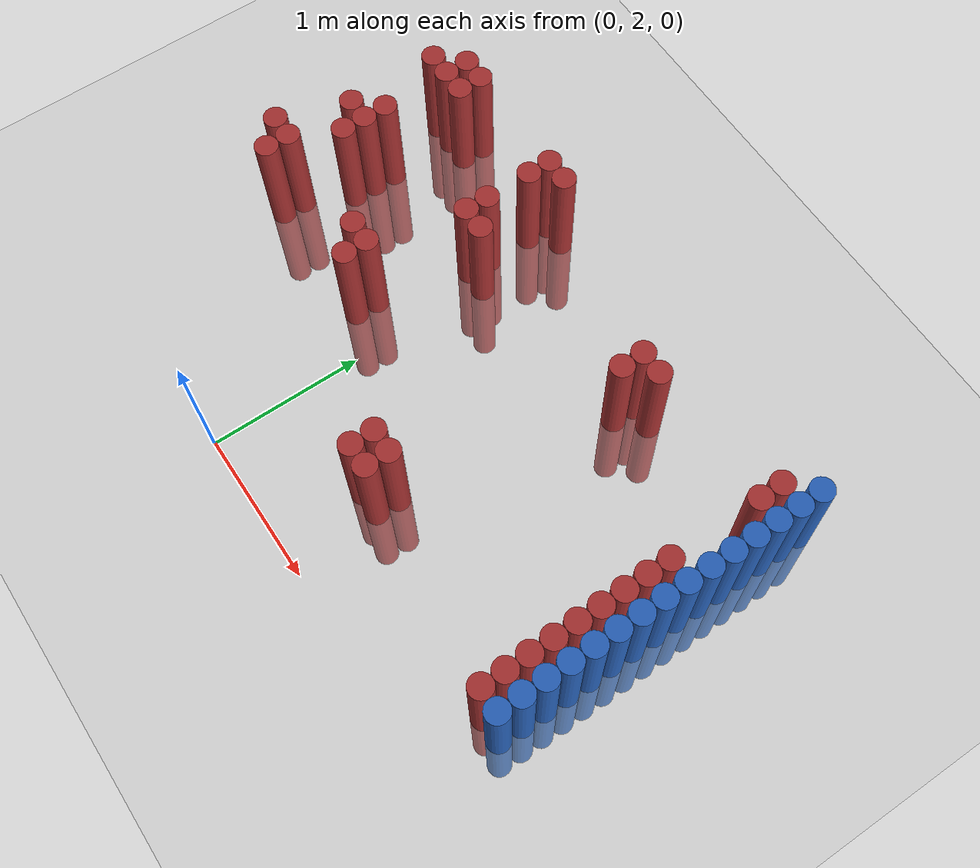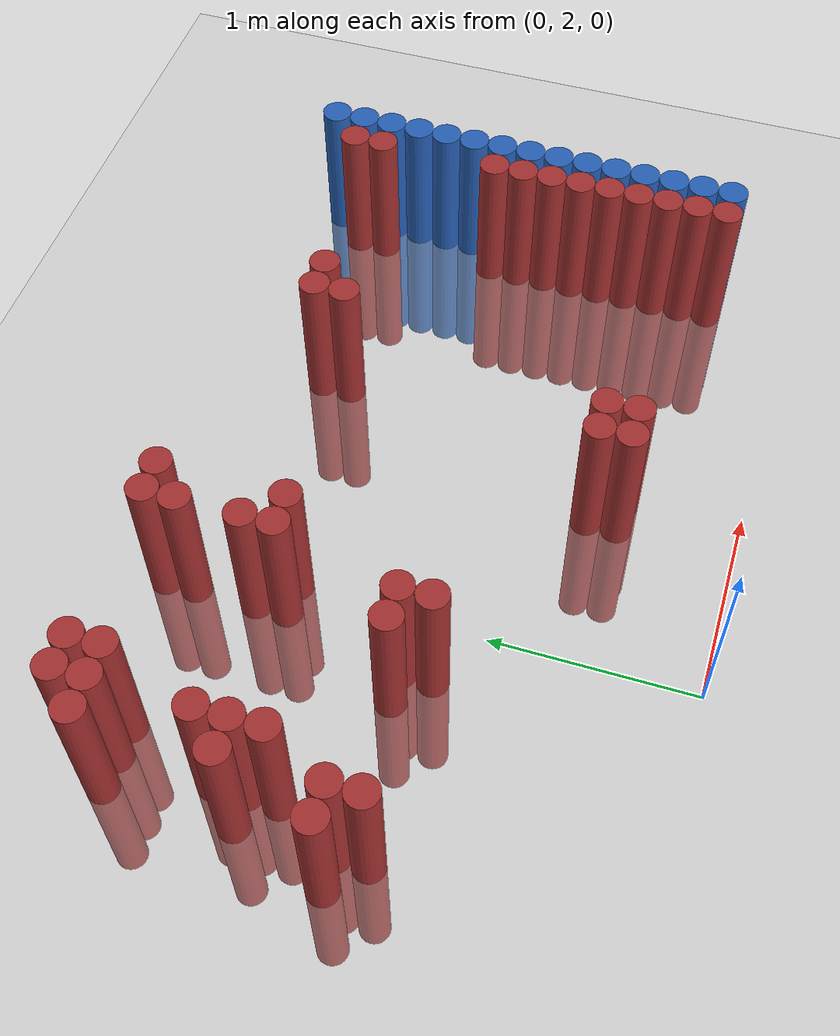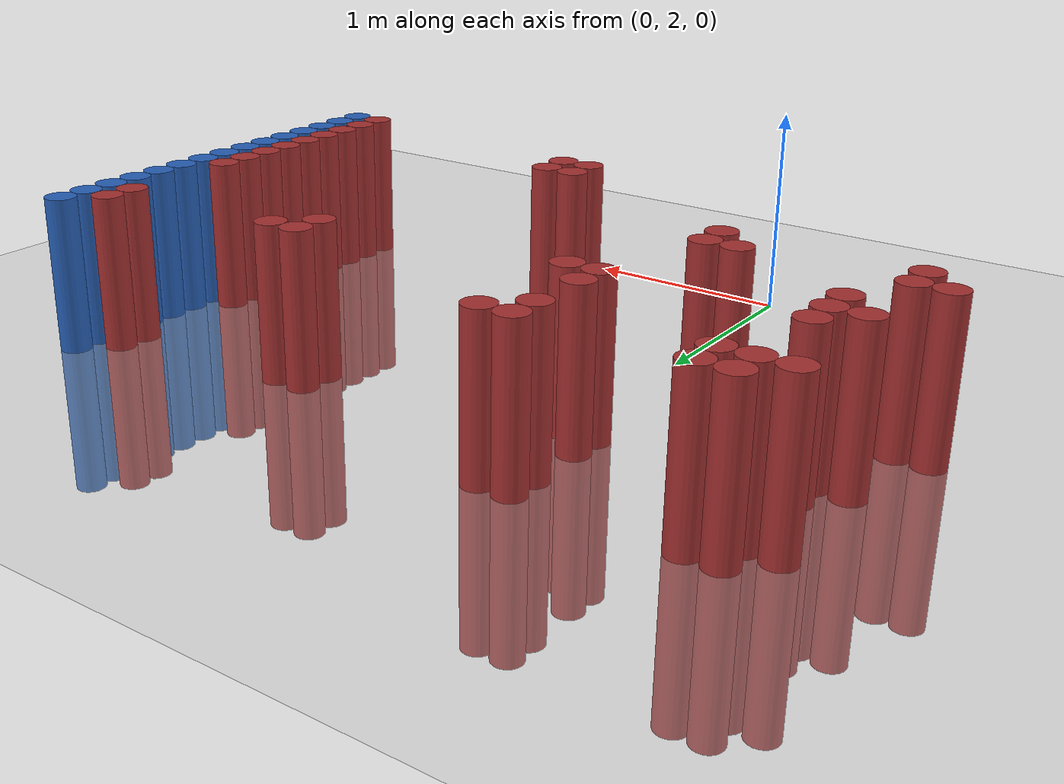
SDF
<sdf version="1.6">
 <world name="default">
  <model name="ground_plane">
   <static>1</static>
   <link name="link">
    <collision name="collision">
     <geometry><plane><normal>0 0 1</normal><size>100 100</size></plane></geometry>
     <surface><friction><ode><mu>100</mu><mu2>50</mu2></ode></friction></surface>
    </collision>
    <visual name="visual">
     <cast_shadows>0</cast_shadows>
     <geometry><plane><normal>0 0 1</normal><size>100 100</size></plane></geometry>
     <material>
      <script><uri>file://media/materials/scripts/gazebo.material</uri><name>Gazebo/Grey</name></script>
     </material>
    </visual>
   </link>
  </model>
  <model name="unit_cylinder_158">
   <static>1</static>
   <pose>-1.325000 3.325000 0.000000 0.000000 0.000000 0.000000</pose>
   <link name="link">
    <inertial>
     <mass>1</mass>
     <inertia><ixx>0.145833</ixx><ixy>0</ixy><ixz>0</ixz><iyy>0.145833</iyy><iyz>0</iyz><izz>0.125</izz></inertia>
    </inertial>
    <collision name="collision">
     <geometry><cylinder><radius>0.075000</radius><length>1.5</length></cylinder></geometry>
    </collision>
    <visual name="visual">
     <geometry><cylinder><radius>0.075000</radius><length>1.5</length></cylinder></geometry>
     <material>
      <ambient>0.648000 0.192000 0.192000 1</ambient>
      <diffuse>0.648000 0.192000 0.192000 1</diffuse>
     </material>
     <material>
      <script><name>Gazebo/Grey</name><uri>file://media/materials/scripts/gazebo.material</uri></script>
     </material>
    </visual>
   </link>
  </model>
  <model name="unit_cylinder_162">
   <static>1</static>
   <pose>-1.175000 3.175000 0.000000 0.000000 0.000000 0.000000</pose>
   <link name="link">
    <inertial>
     <mass>1</mass>
     <inertia><ixx>0.145833</ixx><ixy>0</ixy><ixz>0</ixz><iyy>0.145833</iyy><iyz>0</iyz><izz>0.125</izz></inertia>
    </inertial>
    <collision name="collision">
     <geometry><cylinder><radius>0.075000</radius><length>1.5</length></cylinder></geometry>
    </collision>
    <visual name="visual">
     <geometry><cylinder><radius>0.075000</radius><length>1.5</length></cylinder></geometry>
     <material>
      <ambient>0.648000 0.192000 0.192000 1</ambient>
      <diffuse>0.648000 0.192000 0.192000 1</diffuse>
     </material>
     <material>
      <script><name>Gazebo/Grey</name><uri>file://media/materials/scripts/gazebo.material</uri></script>
     </material>
    </visual>
   </link>
  </model>
  <model name="unit_cylinder_163">
   <static>1</static>
   <pose>-1.175000 3.325000 0.000000 0.000000 0.000000 0.000000</pose>
   <link name="link">
    <inertial>
     <mass>1</mass>
     <inertia><ixx>0.145833</ixx><ixy>0</ixy><ixz>0</ixz><iyy>0.145833</iyy><iyz>0</iyz><izz>0.125</izz></inertia>
    </inertial>
    <collision name="collision">
     <geometry><cylinder><radius>0.075000</radius><length>1.5</length></cylinder></geometry>
    </collision>
    <visual name="visual">
     <geometry><cylinder><radius>0.075000</radius><length>1.5</length></cylinder></geometry>
     <material>
      <ambient>0.648000 0.192000 0.192000 1</ambient>
      <diffuse>0.648000 0.192000 0.192000 1</diffuse>
     </material>
     <material>
      <script><name>Gazebo/Grey</name><uri>file://media/materials/scripts/gazebo.material</uri></script>
     </material>
    </visual>
   </link>
  </model>
  <model name="unit_cylinder_164">
   <static>1</static>
   <pose>-1.175000 3.775000 0.000000 0.000000 0.000000 0.000000</pose>
   <link name="link">
    <inertial>
     <mass>1</mass>
     <inertia><ixx>0.145833</ixx><ixy>0</ixy><ixz>0</ixz><iyy>0.145833</iyy><iyz>0</iyz><izz>0.125</izz></inertia>
    </inertial>
    <collision name="collision">
     <geometry><cylinder><radius>0.075000</radius><length>1.5</length></cylinder></geometry>
    </collision>
    <visual name="visual">
     <geometry><cylinder><radius>0.075000</radius><length>1.5</length></cylinder></geometry>
     <material>
      <ambient>0.648000 0.192000 0.192000 1</ambient>
      <diffuse>0.648000 0.192000 0.192000 1</diffuse>
     </material>
     <material>
      <script><name>Gazebo/Grey</name><uri>file://media/materials/scripts/gazebo.material</uri></script>
     </material>
    </visual>
   </link>
  </model>
  <model name="unit_cylinder_165">
   <static>1</static>
   <pose>-1.175000 4.375000 0.000000 0.000000 0.000000 0.000000</pose>
   <link name="link">
    <inertial>
     <mass>1</mass>
     <inertia><ixx>0.145833</ixx><ixy>0</ixy><ixz>0</ixz><iyy>0.145833</iyy><iyz>0</iyz><izz>0.125</izz></inertia>
    </inertial>
    <collision name="collision">
     <geometry><cylinder><radius>0.075000</radius><length>1.5</length></cylinder></geometry>
    </collision>
    <visual name="visual">
     <geometry><cylinder><radius>0.075000</radius><length>1.5</length></cylinder></geometry>
     <material>
      <ambient>0.648000 0.192000 0.192000 1</ambient>
      <diffuse>0.648000 0.192000 0.192000 1</diffuse>
     </material>
     <material>
      <script><name>Gazebo/Grey</name><uri>file://media/materials/scripts/gazebo.material</uri></script>
     </material>
    </visual>
   </link>
  </model>
  <model name="unit_cylinder_171">
   <static>1</static>
   <pose>-1.025000 3.625000 0.000000 0.000000 0.000000 0.000000</pose>
   <link name="link">
    <inertial>
     <mass>1</mass>
     <inertia><ixx>0.145833</ixx><ixy>0</ixy><ixz>0</ixz><iyy>0.145833</iyy><iyz>0</iyz><izz>0.125</izz></inertia>
    </inertial>
    <collision name="collision">
     <geometry><cylinder><radius>0.075000</radius><length>1.5</length></cylinder></geometry>
    </collision>
    <visual name="visual">
     <geometry><cylinder><radius>0.075000</radius><length>1.5</length></cylinder></geometry>
     <material>
      <ambient>0.648000 0.192000 0.192000 1</ambient>
      <diffuse>0.648000 0.192000 0.192000 1</diffuse>
     </material>
     <material>
      <script><name>Gazebo/Grey</name><uri>file://media/materials/scripts/gazebo.material</uri></script>
     </material>
    </visual>
   </link>
  </model>
  <model name="unit_cylinder_172">
   <static>1</static>
   <pose>-1.025000 3.775000 0.000000 0.000000 0.000000 0.000000</pose>
   <link name="link">
    <inertial>
     <mass>1</mass>
     <inertia><ixx>0.145833</ixx><ixy>0</ixy><ixz>0</ixz><iyy>0.145833</iyy><iyz>0</iyz><izz>0.125</izz></inertia>
    </inertial>
    <collision name="collision">
     <geometry><cylinder><radius>0.075000</radius><length>1.5</length></cylinder></geometry>
    </collision>
    <visual name="visual">
     <geometry><cylinder><radius>0.075000</radius><length>1.5</length></cylinder></geometry>
     <material>
      <ambient>0.648000 0.192000 0.192000 1</ambient>
      <diffuse>0.648000 0.192000 0.192000 1</diffuse>
     </material>
     <material>
      <script><name>Gazebo/Grey</name><uri>file://media/materials/scripts/gazebo.material</uri></script>
     </material>
    </visual>
   </link>
  </model>
  <model name="unit_cylinder_173">
   <static>1</static>
   <pose>-1.025000 3.925000 0.000000 0.000000 0.000000 0.000000</pose>
   <link name="link">
    <inertial>
     <mass>1</mass>
     <inertia><ixx>0.145833</ixx><ixy>0</ixy><ixz>0</ixz><iyy>0.145833</iyy><iyz>0</iyz><izz>0.125</izz></inertia>
    </inertial>
    <collision name="collision">
     <geometry><cylinder><radius>0.075000</radius><length>1.5</length></cylinder></geometry>
    </collision>
    <visual name="visual">
     <geometry><cylinder><radius>0.075000</radius><length>1.5</length></cylinder></geometry>
     <material>
      <ambient>0.648000 0.192000 0.192000 1</ambient>
      <diffuse>0.648000 0.192000 0.192000 1</diffuse>
     </material>
     <material>
      <script><name>Gazebo/Grey</name><uri>file://media/materials/scripts/gazebo.material</uri></script>
     </material>
    </visual>
   </link>
  </model>
  <model name="unit_cylinder_174">
   <static>1</static>
   <pose>-1.025000 4.375000 0.000000 0.000000 0.000000 0.000000</pose>
   <link name="link">
    <inertial>
     <mass>1</mass>
     <inertia><ixx>0.145833</ixx><ixy>0</ixy><ixz>0</ixz><iyy>0.145833</iyy><iyz>0</iyz><izz>0.125</izz></inertia>
    </inertial>
    <collision name="collision">
     <geometry><cylinder><radius>0.075000</radius><length>1.5</length></cylinder></geometry>
    </collision>
    <visual name="visual">
     <geometry><cylinder><radius>0.075000</radius><length>1.5</length></cylinder></geometry>
     <material>
      <ambient>0.648000 0.192000 0.192000 1</ambient>
      <diffuse>0.648000 0.192000 0.192000 1</diffuse>
     </material>
     <material>
      <script><name>Gazebo/Grey</name><uri>file://media/materials/scripts/gazebo.material</uri></script>
     </material>
    </visual>
   </link>
  </model>
  <model name="unit_cylinder_175">
   <static>1</static>
   <pose>-1.025000 4.525000 0.000000 0.000000 0.000000 0.000000</pose>
   <link name="link">
    <inertial>
     <mass>1</mass>
     <inertia><ixx>0.145833</ixx><ixy>0</ixy><ixz>0</ixz><iyy>0.145833</iyy><iyz>0</iyz><izz>0.125</izz></inertia>
    </inertial>
    <collision name="collision">
     <geometry><cylinder><radius>0.075000</radius><length>1.5</length></cylinder></geometry>
    </collision>
    <visual name="visual">
     <geometry><cylinder><radius>0.075000</radius><length>1.5</length></cylinder></geometry>
     <material>
      <ambient>0.648000 0.192000 0.192000 1</ambient>
      <diffuse>0.648000 0.192000 0.192000 1</diffuse>
     </material>
     <material>
      <script><name>Gazebo/Grey</name><uri>file://media/materials/scripts/gazebo.material</uri></script>
     </material>
    </visual>
   </link>
  </model>
  <model name="unit_cylinder_178">
   <static>1</static>
   <pose>-0.875000 4.375000 0.000000 0.000000 0.000000 0.000000</pose>
   <link name="link">
    <inertial>
     <mass>1</mass>
     <inertia><ixx>0.145833</ixx><ixy>0</ixy><ixz>0</ixz><iyy>0.145833</iyy><iyz>0</iyz><izz>0.125</izz></inertia>
    </inertial>
    <collision name="collision">
     <geometry><cylinder><radius>0.075000</radius><length>1.5</length></cylinder></geometry>
    </collision>
    <visual name="visual">
     <geometry><cylinder><radius>0.075000</radius><length>1.5</length></cylinder></geometry>
     <material>
      <ambient>0.648000 0.192000 0.192000 1</ambient>
      <diffuse>0.648000 0.192000 0.192000 1</diffuse>
     </material>
     <material>
      <script><name>Gazebo/Grey</name><uri>file://media/materials/scripts/gazebo.material</uri></script>
     </material>
    </visual>
   </link>
  </model>
  <model name="unit_cylinder_179">
   <static>1</static>
   <pose>-0.875000 4.525000 0.000000 0.000000 0.000000 0.000000</pose>
   <link name="link">
    <inertial>
     <mass>1</mass>
     <inertia><ixx>0.145833</ixx><ixy>0</ixy><ixz>0</ixz><iyy>0.145833</iyy><iyz>0</iyz><izz>0.125</izz></inertia>
    </inertial>
    <collision name="collision">
     <geometry><cylinder><radius>0.075000</radius><length>1.5</length></cylinder></geometry>
    </collision>
    <visual name="visual">
     <geometry><cylinder><radius>0.075000</radius><length>1.5</length></cylinder></geometry>
     <material>
      <ambient>0.648000 0.192000 0.192000 1</ambient>
      <diffuse>0.648000 0.192000 0.192000 1</diffuse>
     </material>
     <material>
      <script><name>Gazebo/Grey</name><uri>file://media/materials/scripts/gazebo.material</uri></script>
     </material>
    </visual>
   </link>
  </model>
  <model name="unit_cylinder_183">
   <static>1</static>
   <pose>-0.425000 3.325000 0.000000 0.000000 0.000000 0.000000</pose>
   <link name="link">
    <inertial>
     <mass>1</mass>
     <inertia><ixx>0.145833</ixx><ixy>0</ixy><ixz>0</ixz><iyy>0.145833</iyy><iyz>0</iyz><izz>0.125</izz></inertia>
    </inertial>
    <collision name="collision">
     <geometry><cylinder><radius>0.075000</radius><length>1.5</length></cylinder></geometry>
    </collision>
    <visual name="visual">
     <geometry><cylinder><radius>0.075000</radius><length>1.5</length></cylinder></geometry>
     <material>
      <ambient>0.648000 0.192000 0.192000 1</ambient>
      <diffuse>0.648000 0.192000 0.192000 1</diffuse>
     </material>
     <material>
      <script><name>Gazebo/Grey</name><uri>file://media/materials/scripts/gazebo.material</uri></script>
     </material>
    </visual>
   </link>
  </model>
  <model name="unit_cylinder_186">
   <static>1</static>
   <pose>-0.275000 3.175000 0.000000 0.000000 0.000000 0.000000</pose>
   <link name="link">
    <inertial>
     <mass>1</mass>
     <inertia><ixx>0.145833</ixx><ixy>0</ixy><ixz>0</ixz><iyy>0.145833</iyy><iyz>0</iyz><izz>0.125</izz></inertia>
    </inertial>
    <collision name="collision">
     <geometry><cylinder><radius>0.075000</radius><length>1.5</length></cylinder></geometry>
    </collision>
    <visual name="visual">
     <geometry><cylinder><radius>0.075000</radius><length>1.5</length></cylinder></geometry>
     <material>
      <ambient>0.648000 0.192000 0.192000 1</ambient>
      <diffuse>0.648000 0.192000 0.192000 1</diffuse>
     </material>
     <material>
      <script><name>Gazebo/Grey</name><uri>file://media/materials/scripts/gazebo.material</uri></script>
     </material>
    </visual>
   </link>
  </model>
  <model name="unit_cylinder_187">
   <static>1</static>
   <pose>-0.275000 3.325000 0.000000 0.000000 0.000000 0.000000</pose>
   <link name="link">
    <inertial>
     <mass>1</mass>
     <inertia><ixx>0.145833</ixx><ixy>0</ixy><ixz>0</ixz><iyy>0.145833</iyy><iyz>0</iyz><izz>0.125</izz></inertia>
    </inertial>
    <collision name="collision">
     <geometry><cylinder><radius>0.075000</radius><length>1.5</length></cylinder></geometry>
    </collision>
    <visual name="visual">
     <geometry><cylinder><radius>0.075000</radius><length>1.5</length></cylinder></geometry>
     <material>
      <ambient>0.648000 0.192000 0.192000 1</ambient>
      <diffuse>0.648000 0.192000 0.192000 1</diffuse>
     </material>
     <material>
      <script><name>Gazebo/Grey</name><uri>file://media/materials/scripts/gazebo.material</uri></script>
     </material>
    </visual>
   </link>
  </model>
  <model name="unit_cylinder_189">
   <static>1</static>
   <pose>-0.125000 3.925000 0.000000 0.000000 0.000000 0.000000</pose>
   <link name="link">
    <inertial>
     <mass>1</mass>
     <inertia><ixx>0.145833</ixx><ixy>0</ixy><ixz>0</ixz><iyy>0.145833</iyy><iyz>0</iyz><izz>0.125</izz></inertia>
    </inertial>
    <collision name="collision">
     <geometry><cylinder><radius>0.075000</radius><length>1.5</length></cylinder></geometry>
    </collision>
    <visual name="visual">
     <geometry><cylinder><radius>0.075000</radius><length>1.5</length></cylinder></geometry>
     <material>
      <ambient>0.648000 0.192000 0.192000 1</ambient>
      <diffuse>0.648000 0.192000 0.192000 1</diffuse>
     </material>
     <material>
      <script><name>Gazebo/Grey</name><uri>file://media/materials/scripts/gazebo.material</uri></script>
     </material>
    </visual>
   </link>
  </model>
  <model name="unit_cylinder_190">
   <static>1</static>
   <pose>-0.125000 4.075000 0.000000 0.000000 0.000000 0.000000</pose>
   <link name="link">
    <inertial>
     <mass>1</mass>
     <inertia><ixx>0.145833</ixx><ixy>0</ixy><ixz>0</ixz><iyy>0.145833</iyy><iyz>0</iyz><izz>0.125</izz></inertia>
    </inertial>
    <collision name="collision">
     <geometry><cylinder><radius>0.075000</radius><length>1.5</length></cylinder></geometry>
    </collision>
    <visual name="visual">
     <geometry><cylinder><radius>0.075000</radius><length>1.5</length></cylinder></geometry>
     <material>
      <ambient>0.648000 0.192000 0.192000 1</ambient>
      <diffuse>0.648000 0.192000 0.192000 1</diffuse>
     </material>
     <material>
      <script><name>Gazebo/Grey</name><uri>file://media/materials/scripts/gazebo.material</uri></script>
     </material>
    </visual>
   </link>
  </model>
  <model name="unit_cylinder_191">
   <static>1</static>
   <pose>-0.125000 4.375000 0.000000 0.000000 0.000000 0.000000</pose>
   <link name="link">
    <inertial>
     <mass>1</mass>
     <inertia><ixx>0.145833</ixx><ixy>0</ixy><ixz>0</ixz><iyy>0.145833</iyy><iyz>0</iyz><izz>0.125</izz></inertia>
    </inertial>
    <collision name="collision">
     <geometry><cylinder><radius>0.075000</radius><length>1.5</length></cylinder></geometry>
    </collision>
    <visual name="visual">
     <geometry><cylinder><radius>0.075000</radius><length>1.5</length></cylinder></geometry>
     <material>
      <ambient>0.648000 0.192000 0.192000 1</ambient>
      <diffuse>0.648000 0.192000 0.192000 1</diffuse>
     </material>
     <material>
      <script><name>Gazebo/Grey</name><uri>file://media/materials/scripts/gazebo.material</uri></script>
     </material>
    </visual>
   </link>
  </model>
  <model name="unit_cylinder_192">
   <static>1</static>
   <pose>-0.125000 4.525000 0.000000 0.000000 0.000000 0.000000</pose>
   <link name="link">
    <inertial>
     <mass>1</mass>
     <inertia><ixx>0.145833</ixx><ixy>0</ixy><ixz>0</ixz><iyy>0.145833</iyy><iyz>0</iyz><izz>0.125</izz></inertia>
    </inertial>
    <collision name="collision">
     <geometry><cylinder><radius>0.075000</radius><length>1.5</length></cylinder></geometry>
    </collision>
    <visual name="visual">
     <geometry><cylinder><radius>0.075000</radius><length>1.5</length></cylinder></geometry>
     <material>
      <ambient>0.648000 0.192000 0.192000 1</ambient>
      <diffuse>0.648000 0.192000 0.192000 1</diffuse>
     </material>
     <material>
      <script><name>Gazebo/Grey</name><uri>file://media/materials/scripts/gazebo.material</uri></script>
     </material>
    </visual>
   </link>
  </model>
  <model name="unit_cylinder_195">
   <static>1</static>
   <pose>0.025000 3.925000 0.000000 0.000000 0.000000 0.000000</pose>
   <link name="link">
    <inertial>
     <mass>1</mass>
     <inertia><ixx>0.145833</ixx><ixy>0</ixy><ixz>0</ixz><iyy>0.145833</iyy><iyz>0</iyz><izz>0.125</izz></inertia>
    </inertial>
    <collision name="collision">
     <geometry><cylinder><radius>0.075000</radius><length>1.5</length></cylinder></geometry>
    </collision>
    <visual name="visual">
     <geometry><cylinder><radius>0.075000</radius><length>1.5</length></cylinder></geometry>
     <material>
      <ambient>0.648000 0.192000 0.192000 1</ambient>
      <diffuse>0.648000 0.192000 0.192000 1</diffuse>
     </material>
     <material>
      <script><name>Gazebo/Grey</name><uri>file://media/materials/scripts/gazebo.material</uri></script>
     </material>
    </visual>
   </link>
  </model>
  <model name="unit_cylinder_196">
   <static>1</static>
   <pose>0.025000 4.525000 0.000000 0.000000 0.000000 0.000000</pose>
   <link name="link">
    <inertial>
     <mass>1</mass>
     <inertia><ixx>0.145833</ixx><ixy>0</ixy><ixz>0</ixz><iyy>0.145833</iyy><iyz>0</iyz><izz>0.125</izz></inertia>
    </inertial>
    <collision name="collision">
     <geometry><cylinder><radius>0.075000</radius><length>1.5</length></cylinder></geometry>
    </collision>
    <visual name="visual">
     <geometry><cylinder><radius>0.075000</radius><length>1.5</length></cylinder></geometry>
     <material>
      <ambient>0.648000 0.192000 0.192000 1</ambient>
      <diffuse>0.648000 0.192000 0.192000 1</diffuse>
     </material>
     <material>
      <script><name>Gazebo/Grey</name><uri>file://media/materials/scripts/gazebo.material</uri></script>
     </material>
    </visual>
   </link>
  </model>
  <model name="unit_cylinder_206">
   <static>1</static>
   <pose>0.775000 2.575000 0.000000 0.000000 0.000000 0.000000</pose>
   <link name="link">
    <inertial>
     <mass>1</mass>
     <inertia><ixx>0.145833</ixx><ixy>0</ixy><ixz>0</ixz><iyy>0.145833</iyy><iyz>0</iyz><izz>0.125</izz></inertia>
    </inertial>
    <collision name="collision">
     <geometry><cylinder><radius>0.075000</radius><length>1.5</length></cylinder></geometry>
    </collision>
    <visual name="visual">
     <geometry><cylinder><radius>0.075000</radius><length>1.5</length></cylinder></geometry>
     <material>
      <ambient>0.648000 0.192000 0.192000 1</ambient>
      <diffuse>0.648000 0.192000 0.192000 1</diffuse>
     </material>
     <material>
      <script><name>Gazebo/Grey</name><uri>file://media/materials/scripts/gazebo.material</uri></script>
     </material>
    </visual>
   </link>
  </model>
  <model name="unit_cylinder_207">
   <static>1</static>
   <pose>0.775000 2.725000 0.000000 0.000000 0.000000 0.000000</pose>
   <link name="link">
    <inertial>
     <mass>1</mass>
     <inertia><ixx>0.145833</ixx><ixy>0</ixy><ixz>0</ixz><iyy>0.145833</iyy><iyz>0</iyz><izz>0.125</izz></inertia>
    </inertial>
    <collision name="collision">
     <geometry><cylinder><radius>0.075000</radius><length>1.5</length></cylinder></geometry>
    </collision>
    <visual name="visual">
     <geometry><cylinder><radius>0.075000</radius><length>1.5</length></cylinder></geometry>
     <material>
      <ambient>0.648000 0.192000 0.192000 1</ambient>
      <diffuse>0.648000 0.192000 0.192000 1</diffuse>
     </material>
     <material>
      <script><name>Gazebo/Grey</name><uri>file://media/materials/scripts/gazebo.material</uri></script>
     </material>
    </visual>
   </link>
  </model>
  <model name="unit_cylinder_208">
   <static>1</static>
   <pose>0.925000 2.575000 0.000000 0.000000 0.000000 0.000000</pose>
   <link name="link">
    <inertial>
     <mass>1</mass>
     <inertia><ixx>0.145833</ixx><ixy>0</ixy><ixz>0</ixz><iyy>0.145833</iyy><iyz>0</iyz><izz>0.125</izz></inertia>
    </inertial>
    <collision name="collision">
     <geometry><cylinder><radius>0.075000</radius><length>1.5</length></cylinder></geometry>
    </collision>
    <visual name="visual">
     <geometry><cylinder><radius>0.075000</radius><length>1.5</length></cylinder></geometry>
     <material>
      <ambient>0.648000 0.192000 0.192000 1</ambient>
      <diffuse>0.648000 0.192000 0.192000 1</diffuse>
     </material>
     <material>
      <script><name>Gazebo/Grey</name><uri>file://media/materials/scripts/gazebo.material</uri></script>
     </material>
    </visual>
   </link>
  </model>
  <model name="unit_cylinder_209">
   <static>1</static>
   <pose>0.925000 2.725000 0.000000 0.000000 0.000000 0.000000</pose>
   <link name="link">
    <inertial>
     <mass>1</mass>
     <inertia><ixx>0.145833</ixx><ixy>0</ixy><ixz>0</ixz><iyy>0.145833</iyy><iyz>0</iyz><izz>0.125</izz></inertia>
    </inertial>
    <collision name="collision">
     <geometry><cylinder><radius>0.075000</radius><length>1.5</length></cylinder></geometry>
    </collision>
    <visual name="visual">
     <geometry><cylinder><radius>0.075000</radius><length>1.5</length></cylinder></geometry>
     <material>
      <ambient>0.648000 0.192000 0.192000 1</ambient>
      <diffuse>0.648000 0.192000 0.192000 1</diffuse>
     </material>
     <material>
      <script><name>Gazebo/Grey</name><uri>file://media/materials/scripts/gazebo.material</uri></script>
     </material>
    </visual>
   </link>
  </model>
  <model name="unit_cylinder_210">
   <static>1</static>
   <pose>1.225000 4.075000 0.000000 0.000000 0.000000 0.000000</pose>
   <link name="link">
    <inertial>
     <mass>1</mass>
     <inertia><ixx>0.145833</ixx><ixy>0</ixy><ixz>0</ixz><iyy>0.145833</iyy><iyz>0</iyz><izz>0.125</izz></inertia>
    </inertial>
    <collision name="collision">
     <geometry><cylinder><radius>0.075000</radius><length>1.5</length></cylinder></geometry>
    </collision>
    <visual name="visual">
     <geometry><cylinder><radius>0.075000</radius><length>1.5</length></cylinder></geometry>
     <material>
      <ambient>0.648000 0.192000 0.192000 1</ambient>
      <diffuse>0.648000 0.192000 0.192000 1</diffuse>
     </material>
     <material>
      <script><name>Gazebo/Grey</name><uri>file://media/materials/scripts/gazebo.material</uri></script>
     </material>
    </visual>
   </link>
  </model>
  <model name="unit_cylinder_211">
   <static>1</static>
   <pose>1.225000 4.225000 0.000000 0.000000 0.000000 0.000000</pose>
   <link name="link">
    <inertial>
     <mass>1</mass>
     <inertia><ixx>0.145833</ixx><ixy>0</ixy><ixz>0</ixz><iyy>0.145833</iyy><iyz>0</iyz><izz>0.125</izz></inertia>
    </inertial>
    <collision name="collision">
     <geometry><cylinder><radius>0.075000</radius><length>1.5</length></cylinder></geometry>
    </collision>
    <visual name="visual">
     <geometry><cylinder><radius>0.075000</radius><length>1.5</length></cylinder></geometry>
     <material>
      <ambient>0.648000 0.192000 0.192000 1</ambient>
      <diffuse>0.648000 0.192000 0.192000 1</diffuse>
     </material>
     <material>
      <script><name>Gazebo/Grey</name><uri>file://media/materials/scripts/gazebo.material</uri></script>
     </material>
    </visual>
   </link>
  </model>
  <model name="unit_cylinder_212">
   <static>1</static>
   <pose>1.375000 4.225000 0.000000 0.000000 0.000000 0.000000</pose>
   <link name="link">
    <inertial>
     <mass>1</mass>
     <inertia><ixx>0.145833</ixx><ixy>0</ixy><ixz>0</ixz><iyy>0.145833</iyy><iyz>0</iyz><izz>0.125</izz></inertia>
    </inertial>
    <collision name="collision">
     <geometry><cylinder><radius>0.075000</radius><length>1.5</length></cylinder></geometry>
    </collision>
    <visual name="visual">
     <geometry><cylinder><radius>0.075000</radius><length>1.5</length></cylinder></geometry>
     <material>
      <ambient>0.648000 0.192000 0.192000 1</ambient>
      <diffuse>0.648000 0.192000 0.192000 1</diffuse>
     </material>
     <material>
      <script><name>Gazebo/Grey</name><uri>file://media/materials/scripts/gazebo.material</uri></script>
     </material>
    </visual>
   </link>
  </model>
  <model name="unit_cylinder_230">
   <static>1</static>
   <pose>2.275000 2.425000 0.000000 0.000000 0.000000 0.000000</pose>
   <link name="link">
    <inertial>
     <mass>1</mass>
     <inertia><ixx>0.145833</ixx><ixy>0</ixy><ixz>0</ixz><iyy>0.145833</iyy><iyz>0</iyz><izz>0.125</izz></inertia>
    </inertial>
    <collision name="collision">
     <geometry><cylinder><radius>0.075000</radius><length>1.5</length></cylinder></geometry>
    </collision>
    <visual name="visual">
     <geometry><cylinder><radius>0.075000</radius><length>1.5</length></cylinder></geometry>
     <material>
      <ambient>0.648000 0.192000 0.192000 1</ambient>
      <diffuse>0.648000 0.192000 0.192000 1</diffuse>
     </material>
     <material>
      <script><name>Gazebo/Grey</name><uri>file://media/materials/scripts/gazebo.material</uri></script>
     </material>
    </visual>
   </link>
  </model>
  <model name="unit_cylinder_231">
   <static>1</static>
   <pose>2.275000 2.575000 0.000000 0.000000 0.000000 0.000000</pose>
   <link name="link">
    <inertial>
     <mass>1</mass>
     <inertia><ixx>0.145833</ixx><ixy>0</ixy><ixz>0</ixz><iyy>0.145833</iyy><iyz>0</iyz><izz>0.125</izz></inertia>
    </inertial>
    <collision name="collision">
     <geometry><cylinder><radius>0.075000</radius><length>1.5</length></cylinder></geometry>
    </collision>
    <visual name="visual">
     <geometry><cylinder><radius>0.075000</radius><length>1.5</length></cylinder></geometry>
     <material>
      <ambient>0.648000 0.192000 0.192000 1</ambient>
      <diffuse>0.648000 0.192000 0.192000 1</diffuse>
     </material>
     <material>
      <script><name>Gazebo/Grey</name><uri>file://media/materials/scripts/gazebo.material</uri></script>
     </material>
    </visual>
   </link>
  </model>
  <model name="unit_cylinder_232">
   <static>1</static>
   <pose>2.275000 2.725000 0.000000 0.000000 0.000000 0.000000</pose>
   <link name="link">
    <inertial>
     <mass>1</mass>
     <inertia><ixx>0.145833</ixx><ixy>0</ixy><ixz>0</ixz><iyy>0.145833</iyy><iyz>0</iyz><izz>0.125</izz></inertia>
    </inertial>
    <collision name="collision">
     <geometry><cylinder><radius>0.075000</radius><length>1.5</length></cylinder></geometry>
    </collision>
    <visual name="visual">
     <geometry><cylinder><radius>0.075000</radius><length>1.5</length></cylinder></geometry>
     <material>
      <ambient>0.648000 0.192000 0.192000 1</ambient>
      <diffuse>0.648000 0.192000 0.192000 1</diffuse>
     </material>
     <material>
      <script><name>Gazebo/Grey</name><uri>file://media/materials/scripts/gazebo.material</uri></script>
     </material>
    </visual>
   </link>
  </model>
  <model name="unit_cylinder_233">
   <static>1</static>
   <pose>2.275000 2.875000 0.000000 0.000000 0.000000 0.000000</pose>
   <link name="link">
    <inertial>
     <mass>1</mass>
     <inertia><ixx>0.145833</ixx><ixy>0</ixy><ixz>0</ixz><iyy>0.145833</iyy><iyz>0</iyz><izz>0.125</izz></inertia>
    </inertial>
    <collision name="collision">
     <geometry><cylinder><radius>0.075000</radius><length>1.5</length></cylinder></geometry>
    </collision>
    <visual name="visual">
     <geometry><cylinder><radius>0.075000</radius><length>1.5</length></cylinder></geometry>
     <material>
      <ambient>0.648000 0.192000 0.192000 1</ambient>
      <diffuse>0.648000 0.192000 0.192000 1</diffuse>
     </material>
     <material>
      <script><name>Gazebo/Grey</name><uri>file://media/materials/scripts/gazebo.material</uri></script>
     </material>
    </visual>
   </link>
  </model>
  <model name="unit_cylinder_234">
   <static>1</static>
   <pose>2.275000 3.025000 0.000000 0.000000 0.000000 0.000000</pose>
   <link name="link">
    <inertial>
     <mass>1</mass>
     <inertia><ixx>0.145833</ixx><ixy>0</ixy><ixz>0</ixz><iyy>0.145833</iyy><iyz>0</iyz><izz>0.125</izz></inertia>
    </inertial>
    <collision name="collision">
     <geometry><cylinder><radius>0.075000</radius><length>1.5</length></cylinder></geometry>
    </collision>
    <visual name="visual">
     <geometry><cylinder><radius>0.075000</radius><length>1.5</length></cylinder></geometry>
     <material>
      <ambient>0.648000 0.192000 0.192000 1</ambient>
      <diffuse>0.648000 0.192000 0.192000 1</diffuse>
     </material>
     <material>
      <script><name>Gazebo/Grey</name><uri>file://media/materials/scripts/gazebo.material</uri></script>
     </material>
    </visual>
   </link>
  </model>
  <model name="unit_cylinder_235">
   <static>1</static>
   <pose>2.275000 3.175000 0.000000 0.000000 0.000000 0.000000</pose>
   <link name="link">
    <inertial>
     <mass>1</mass>
     <inertia><ixx>0.145833</ixx><ixy>0</ixy><ixz>0</ixz><iyy>0.145833</iyy><iyz>0</iyz><izz>0.125</izz></inertia>
    </inertial>
    <collision name="collision">
     <geometry><cylinder><radius>0.075000</radius><length>1.5</length></cylinder></geometry>
    </collision>
    <visual name="visual">
     <geometry><cylinder><radius>0.075000</radius><length>1.5</length></cylinder></geometry>
     <material>
      <ambient>0.648000 0.192000 0.192000 1</ambient>
      <diffuse>0.648000 0.192000 0.192000 1</diffuse>
     </material>
     <material>
      <script><name>Gazebo/Grey</name><uri>file://media/materials/scripts/gazebo.material</uri></script>
     </material>
    </visual>
   </link>
  </model>
  <model name="unit_cylinder_236">
   <static>1</static>
   <pose>2.275000 3.325000 0.000000 0.000000 0.000000 0.000000</pose>
   <link name="link">
    <inertial>
     <mass>1</mass>
     <inertia><ixx>0.145833</ixx><ixy>0</ixy><ixz>0</ixz><iyy>0.145833</iyy><iyz>0</iyz><izz>0.125</izz></inertia>
    </inertial>
    <collision name="collision">
     <geometry><cylinder><radius>0.075000</radius><length>1.5</length></cylinder></geometry>
    </collision>
    <visual name="visual">
     <geometry><cylinder><radius>0.075000</radius><length>1.5</length></cylinder></geometry>
     <material>
      <ambient>0.648000 0.192000 0.192000 1</ambient>
      <diffuse>0.648000 0.192000 0.192000 1</diffuse>
     </material>
     <material>
      <script><name>Gazebo/Grey</name><uri>file://media/materials/scripts/gazebo.material</uri></script>
     </material>
    </visual>
   </link>
  </model>
  <model name="unit_cylinder_237">
   <static>1</static>
   <pose>2.275000 3.475000 0.000000 0.000000 0.000000 0.000000</pose>
   <link name="link">
    <inertial>
     <mass>1</mass>
     <inertia><ixx>0.145833</ixx><ixy>0</ixy><ixz>0</ixz><iyy>0.145833</iyy><iyz>0</iyz><izz>0.125</izz></inertia>
    </inertial>
    <collision name="collision">
     <geometry><cylinder><radius>0.075000</radius><length>1.5</length></cylinder></geometry>
    </collision>
    <visual name="visual">
     <geometry><cylinder><radius>0.075000</radius><length>1.5</length></cylinder></geometry>
     <material>
      <ambient>0.648000 0.192000 0.192000 1</ambient>
      <diffuse>0.648000 0.192000 0.192000 1</diffuse>
     </material>
     <material>
      <script><name>Gazebo/Grey</name><uri>file://media/materials/scripts/gazebo.material</uri></script>
     </material>
    </visual>
   </link>
  </model>
  <model name="unit_cylinder_238">
   <static>1</static>
   <pose>2.275000 3.625000 0.000000 0.000000 0.000000 0.000000</pose>
   <link name="link">
    <inertial>
     <mass>1</mass>
     <inertia><ixx>0.145833</ixx><ixy>0</ixy><ixz>0</ixz><iyy>0.145833</iyy><iyz>0</iyz><izz>0.125</izz></inertia>
    </inertial>
    <collision name="collision">
     <geometry><cylinder><radius>0.075000</radius><length>1.5</length></cylinder></geometry>
    </collision>
    <visual name="visual">
     <geometry><cylinder><radius>0.075000</radius><length>1.5</length></cylinder></geometry>
     <material>
      <ambient>0.648000 0.192000 0.192000 1</ambient>
      <diffuse>0.648000 0.192000 0.192000 1</diffuse>
     </material>
     <material>
      <script><name>Gazebo/Grey</name><uri>file://media/materials/scripts/gazebo.material</uri></script>
     </material>
    </visual>
   </link>
  </model>
  <model name="unit_cylinder_239">
   <static>1</static>
   <pose>2.275000 4.225000 0.000000 0.000000 0.000000 0.000000</pose>
   <link name="link">
    <inertial>
     <mass>1</mass>
     <inertia><ixx>0.145833</ixx><ixy>0</ixy><ixz>0</ixz><iyy>0.145833</iyy><iyz>0</iyz><izz>0.125</izz></inertia>
    </inertial>
    <collision name="collision">
     <geometry><cylinder><radius>0.075000</radius><length>1.5</length></cylinder></geometry>
    </collision>
    <visual name="visual">
     <geometry><cylinder><radius>0.075000</radius><length>1.5</length></cylinder></geometry>
     <material>
      <ambient>0.648000 0.192000 0.192000 1</ambient>
      <diffuse>0.648000 0.192000 0.192000 1</diffuse>
     </material>
     <material>
      <script><name>Gazebo/Grey</name><uri>file://media/materials/scripts/gazebo.material</uri></script>
     </material>
    </visual>
   </link>
  </model>
  <model name="unit_cylinder_240">
   <static>1</static>
   <pose>2.275000 4.375000 0.000000 0.000000 0.000000 0.000000</pose>
   <link name="link">
    <inertial>
     <mass>1</mass>
     <inertia><ixx>0.145833</ixx><ixy>0</ixy><ixz>0</ixz><iyy>0.145833</iyy><iyz>0</iyz><izz>0.125</izz></inertia>
    </inertial>
    <collision name="collision">
     <geometry><cylinder><radius>0.075000</radius><length>1.5</length></cylinder></geometry>
    </collision>
    <visual name="visual">
     <geometry><cylinder><radius>0.075000</radius><length>1.5</length></cylinder></geometry>
     <material>
      <ambient>0.648000 0.192000 0.192000 1</ambient>
      <diffuse>0.648000 0.192000 0.192000 1</diffuse>
     </material>
     <material>
      <script><name>Gazebo/Grey</name><uri>file://media/materials/scripts/gazebo.material</uri></script>
     </material>
    </visual>
   </link>
  </model>
  <model name="unit_cylinder_256">
   <static>1</static>
   <pose>2.425000 2.425000 0.000000 0.000000 0.000000 0.000000</pose>
   <link name="link">
    <inertial>
     <mass>1</mass>
     <inertia><ixx>0.145833</ixx><ixy>0</ixy><ixz>0</ixz><iyy>0.145833</iyy><iyz>0</iyz><izz>0.125</izz></inertia>
    </inertial>
    <collision name="collision">
     <geometry><cylinder><radius>0.075000</radius><length>1.5</length></cylinder></geometry>
    </collision>
    <visual name="visual">
     <geometry><cylinder><radius>0.075000</radius><length>1.5</length></cylinder></geometry>
     <material>
      <ambient>0.152000 0.379000 0.720000 1</ambient>
      <diffuse>0.152000 0.379000 0.720000 1</diffuse>
     </material>
     <material>
      <script><name>Gazebo/Grey</name><uri>file://media/materials/scripts/gazebo.material</uri></script>
     </material>
    </visual>
   </link>
  </model>
  <model name="unit_cylinder_257">
   <static>1</static>
   <pose>2.425000 2.575000 0.000000 0.000000 0.000000 0.000000</pose>
   <link name="link">
    <inertial>
     <mass>1</mass>
     <inertia><ixx>0.145833</ixx><ixy>0</ixy><ixz>0</ixz><iyy>0.145833</iyy><iyz>0</iyz><izz>0.125</izz></inertia>
    </inertial>
    <collision name="collision">
     <geometry><cylinder><radius>0.075000</radius><length>1.5</length></cylinder></geometry>
    </collision>
    <visual name="visual">
     <geometry><cylinder><radius>0.075000</radius><length>1.5</length></cylinder></geometry>
     <material>
      <ambient>0.152000 0.379000 0.720000 1</ambient>
      <diffuse>0.152000 0.379000 0.720000 1</diffuse>
     </material>
     <material>
      <script><name>Gazebo/Grey</name><uri>file://media/materials/scripts/gazebo.material</uri></script>
     </material>
    </visual>
   </link>
  </model>
  <model name="unit_cylinder_258">
   <static>1</static>
   <pose>2.425000 2.725000 0.000000 0.000000 0.000000 0.000000</pose>
   <link name="link">
    <inertial>
     <mass>1</mass>
     <inertia><ixx>0.145833</ixx><ixy>0</ixy><ixz>0</ixz><iyy>0.145833</iyy><iyz>0</iyz><izz>0.125</izz></inertia>
    </inertial>
    <collision name="collision">
     <geometry><cylinder><radius>0.075000</radius><length>1.5</length></cylinder></geometry>
    </collision>
    <visual name="visual">
     <geometry><cylinder><radius>0.075000</radius><length>1.5</length></cylinder></geometry>
     <material>
      <ambient>0.152000 0.379000 0.720000 1</ambient>
      <diffuse>0.152000 0.379000 0.720000 1</diffuse>
     </material>
     <material>
      <script><name>Gazebo/Grey</name><uri>file://media/materials/scripts/gazebo.material</uri></script>
     </material>
    </visual>
   </link>
  </model>
  <model name="unit_cylinder_259">
   <static>1</static>
   <pose>2.425000 2.875000 0.000000 0.000000 0.000000 0.000000</pose>
   <link name="link">
    <inertial>
     <mass>1</mass>
     <inertia><ixx>0.145833</ixx><ixy>0</ixy><ixz>0</ixz><iyy>0.145833</iyy><iyz>0</iyz><izz>0.125</izz></inertia>
    </inertial>
    <collision name="collision">
     <geometry><cylinder><radius>0.075000</radius><length>1.5</length></cylinder></geometry>
    </collision>
    <visual name="visual">
     <geometry><cylinder><radius>0.075000</radius><length>1.5</length></cylinder></geometry>
     <material>
      <ambient>0.152000 0.379000 0.720000 1</ambient>
      <diffuse>0.152000 0.379000 0.720000 1</diffuse>
     </material>
     <material>
      <script><name>Gazebo/Grey</name><uri>file://media/materials/scripts/gazebo.material</uri></script>
     </material>
    </visual>
   </link>
  </model>
  <model name="unit_cylinder_260">
   <static>1</static>
   <pose>2.425000 3.025000 0.000000 0.000000 0.000000 0.000000</pose>
   <link name="link">
    <inertial>
     <mass>1</mass>
     <inertia><ixx>0.145833</ixx><ixy>0</ixy><ixz>0</ixz><iyy>0.145833</iyy><iyz>0</iyz><izz>0.125</izz></inertia>
    </inertial>
    <collision name="collision">
     <geometry><cylinder><radius>0.075000</radius><length>1.5</length></cylinder></geometry>
    </collision>
    <visual name="visual">
     <geometry><cylinder><radius>0.075000</radius><length>1.5</length></cylinder></geometry>
     <material>
      <ambient>0.152000 0.379000 0.720000 1</ambient>
      <diffuse>0.152000 0.379000 0.720000 1</diffuse>
     </material>
     <material>
      <script><name>Gazebo/Grey</name><uri>file://media/materials/scripts/gazebo.material</uri></script>
     </material>
    </visual>
   </link>
  </model>
  <model name="unit_cylinder_261">
   <static>1</static>
   <pose>2.425000 3.175000 0.000000 0.000000 0.000000 0.000000</pose>
   <link name="link">
    <inertial>
     <mass>1</mass>
     <inertia><ixx>0.145833</ixx><ixy>0</ixy><ixz>0</ixz><iyy>0.145833</iyy><iyz>0</iyz><izz>0.125</izz></inertia>
    </inertial>
    <collision name="collision">
     <geometry><cylinder><radius>0.075000</radius><length>1.5</length></cylinder></geometry>
    </collision>
    <visual name="visual">
     <geometry><cylinder><radius>0.075000</radius><length>1.5</length></cylinder></geometry>
     <material>
      <ambient>0.152000 0.379000 0.720000 1</ambient>
      <diffuse>0.152000 0.379000 0.720000 1</diffuse>
     </material>
     <material>
      <script><name>Gazebo/Grey</name><uri>file://media/materials/scripts/gazebo.material</uri></script>
     </material>
    </visual>
   </link>
  </model>
  <model name="unit_cylinder_262">
   <static>1</static>
   <pose>2.425000 3.325000 0.000000 0.000000 0.000000 0.000000</pose>
   <link name="link">
    <inertial>
     <mass>1</mass>
     <inertia><ixx>0.145833</ixx><ixy>0</ixy><ixz>0</ixz><iyy>0.145833</iyy><iyz>0</iyz><izz>0.125</izz></inertia>
    </inertial>
    <collision name="collision">
     <geometry><cylinder><radius>0.075000</radius><length>1.5</length></cylinder></geometry>
    </collision>
    <visual name="visual">
     <geometry><cylinder><radius>0.075000</radius><length>1.5</length></cylinder></geometry>
     <material>
      <ambient>0.152000 0.379000 0.720000 1</ambient>
      <diffuse>0.152000 0.379000 0.720000 1</diffuse>
     </material>
     <material>
      <script><name>Gazebo/Grey</name><uri>file://media/materials/scripts/gazebo.material</uri></script>
     </material>
    </visual>
   </link>
  </model>
  <model name="unit_cylinder_263">
   <static>1</static>
   <pose>2.425000 3.475000 0.000000 0.000000 0.000000 0.000000</pose>
   <link name="link">
    <inertial>
     <mass>1</mass>
     <inertia><ixx>0.145833</ixx><ixy>0</ixy><ixz>0</ixz><iyy>0.145833</iyy><iyz>0</iyz><izz>0.125</izz></inertia>
    </inertial>
    <collision name="collision">
     <geometry><cylinder><radius>0.075000</radius><length>1.5</length></cylinder></geometry>
    </collision>
    <visual name="visual">
     <geometry><cylinder><radius>0.075000</radius><length>1.5</length></cylinder></geometry>
     <material>
      <ambient>0.152000 0.379000 0.720000 1</ambient>
      <diffuse>0.152000 0.379000 0.720000 1</diffuse>
     </material>
     <material>
      <script><name>Gazebo/Grey</name><uri>file://media/materials/scripts/gazebo.material</uri></script>
     </material>
    </visual>
   </link>
  </model>
  <model name="unit_cylinder_264">
   <static>1</static>
   <pose>2.425000 3.625000 0.000000 0.000000 0.000000 0.000000</pose>
   <link name="link">
    <inertial>
     <mass>1</mass>
     <inertia><ixx>0.145833</ixx><ixy>0</ixy><ixz>0</ixz><iyy>0.145833</iyy><iyz>0</iyz><izz>0.125</izz></inertia>
    </inertial>
    <collision name="collision">
     <geometry><cylinder><radius>0.075000</radius><length>1.5</length></cylinder></geometry>
    </collision>
    <visual name="visual">
     <geometry><cylinder><radius>0.075000</radius><length>1.5</length></cylinder></geometry>
     <material>
      <ambient>0.152000 0.379000 0.720000 1</ambient>
      <diffuse>0.152000 0.379000 0.720000 1</diffuse>
     </material>
     <material>
      <script><name>Gazebo/Grey</name><uri>file://media/materials/scripts/gazebo.material</uri></script>
     </material>
    </visual>
   </link>
  </model>
  <model name="unit_cylinder_265">
   <static>1</static>
   <pose>2.425000 3.775000 0.000000 0.000000 0.000000 0.000000</pose>
   <link name="link">
    <inertial>
     <mass>1</mass>
     <inertia><ixx>0.145833</ixx><ixy>0</ixy><ixz>0</ixz><iyy>0.145833</iyy><iyz>0</iyz><izz>0.125</izz></inertia>
    </inertial>
    <collision name="collision">
     <geometry><cylinder><radius>0.075000</radius><length>1.5</length></cylinder></geometry>
    </collision>
    <visual name="visual">
     <geometry><cylinder><radius>0.075000</radius><length>1.5</length></cylinder></geometry>
     <material>
      <ambient>0.152000 0.379000 0.720000 1</ambient>
      <diffuse>0.152000 0.379000 0.720000 1</diffuse>
     </material>
     <material>
      <script><name>Gazebo/Grey</name><uri>file://media/materials/scripts/gazebo.material</uri></script>
     </material>
    </visual>
   </link>
  </model>
  <model name="unit_cylinder_266">
   <static>1</static>
   <pose>2.425000 3.925000 0.000000 0.000000 0.000000 0.000000</pose>
   <link name="link">
    <inertial>
     <mass>1</mass>
     <inertia><ixx>0.145833</ixx><ixy>0</ixy><ixz>0</ixz><iyy>0.145833</iyy><iyz>0</iyz><izz>0.125</izz></inertia>
    </inertial>
    <collision name="collision">
     <geometry><cylinder><radius>0.075000</radius><length>1.5</length></cylinder></geometry>
    </collision>
    <visual name="visual">
     <geometry><cylinder><radius>0.075000</radius><length>1.5</length></cylinder></geometry>
     <material>
      <ambient>0.152000 0.379000 0.720000 1</ambient>
      <diffuse>0.152000 0.379000 0.720000 1</diffuse>
     </material>
     <material>
      <script><name>Gazebo/Grey</name><uri>file://media/materials/scripts/gazebo.material</uri></script>
     </material>
    </visual>
   </link>
  </model>
  <model name="unit_cylinder_267">
   <static>1</static>
   <pose>2.425000 4.075000 0.000000 0.000000 0.000000 0.000000</pose>
   <link name="link">
    <inertial>
     <mass>1</mass>
     <inertia><ixx>0.145833</ixx><ixy>0</ixy><ixz>0</ixz><iyy>0.145833</iyy><iyz>0</iyz><izz>0.125</izz></inertia>
    </inertial>
    <collision name="collision">
     <geometry><cylinder><radius>0.075000</radius><length>1.5</length></cylinder></geometry>
    </collision>
    <visual name="visual">
     <geometry><cylinder><radius>0.075000</radius><length>1.5</length></cylinder></geometry>
     <material>
      <ambient>0.152000 0.379000 0.720000 1</ambient>
      <diffuse>0.152000 0.379000 0.720000 1</diffuse>
     </material>
     <material>
      <script><name>Gazebo/Grey</name><uri>file://media/materials/scripts/gazebo.material</uri></script>
     </material>
    </visual>
   </link>
  </model>
  <model name="unit_cylinder_268">
   <static>1</static>
   <pose>2.425000 4.225000 0.000000 0.000000 0.000000 0.000000</pose>
   <link name="link">
    <inertial>
     <mass>1</mass>
     <inertia><ixx>0.145833</ixx><ixy>0</ixy><ixz>0</ixz><iyy>0.145833</iyy><iyz>0</iyz><izz>0.125</izz></inertia>
    </inertial>
    <collision name="collision">
     <geometry><cylinder><radius>0.075000</radius><length>1.5</length></cylinder></geometry>
    </collision>
    <visual name="visual">
     <geometry><cylinder><radius>0.075000</radius><length>1.5</length></cylinder></geometry>
     <material>
      <ambient>0.152000 0.379000 0.720000 1</ambient>
      <diffuse>0.152000 0.379000 0.720000 1</diffuse>
     </material>
     <material>
      <script><name>Gazebo/Grey</name><uri>file://media/materials/scripts/gazebo.material</uri></script>
     </material>
    </visual>
   </link>
  </model>
  <model name="unit_cylinder_269">
   <static>1</static>
   <pose>2.425000 4.375000 0.000000 0.000000 0.000000 0.000000</pose>
   <link name="link">
    <inertial>
     <mass>1</mass>
     <inertia><ixx>0.145833</ixx><ixy>0</ixy><ixz>0</ixz><iyy>0.145833</iyy><iyz>0</iyz><izz>0.125</izz></inertia>
    </inertial>
    <collision name="collision">
     <geometry><cylinder><radius>0.075000</radius><length>1.5</length></cylinder></geometry>
    </collision>
    <visual name="visual">
     <geometry><cylinder><radius>0.075000</radius><length>1.5</length></cylinder></geometry>
     <material>
      <ambient>0.152000 0.379000 0.720000 1</ambient>
      <diffuse>0.152000 0.379000 0.720000 1</diffuse>
     </material>
     <material>
      <script><name>Gazebo/Grey</name><uri>file://media/materials/scripts/gazebo.material</uri></script>
     </material>
    </visual>
   </link>
  </model>
  <model name="unit_cylinder_270">
   <static>1</static>
   <pose>2.425000 4.525000 0.000000 0.000000 0.000000 0.000000</pose>
   <link name="link">
    <inertial>
     <mass>1</mass>
     <inertia><ixx>0.145833</ixx><ixy>0</ixy><ixz>0</ixz><iyy>0.145833</iyy><iyz>0</iyz><izz>0.125</izz></inertia>
    </inertial>
    <collision name="collision">
     <geometry><cylinder><radius>0.075000</radius><length>1.5</length></cylinder></geometry>
    </collision>
    <visual name="visual">
     <geometry><cylinder><radius>0.075000</radius><length>1.5</length></cylinder></geometry>
     <material>
      <ambient>0.152000 0.379000 0.720000 1</ambient>
      <diffuse>0.152000 0.379000 0.720000 1</diffuse>
     </material>
     <material>
      <script><name>Gazebo/Grey</name><uri>file://media/materials/scripts/gazebo.material</uri></script>
     </material>
    </visual>
   </link>
  </model>
 </world>
</sdf>
